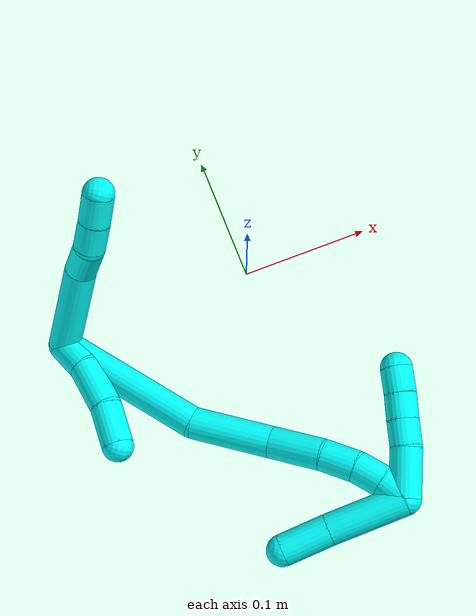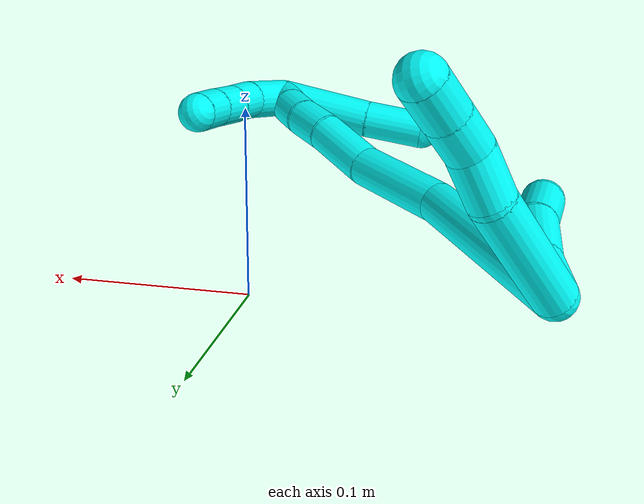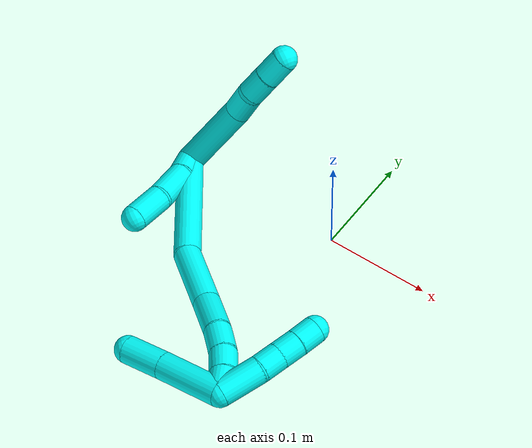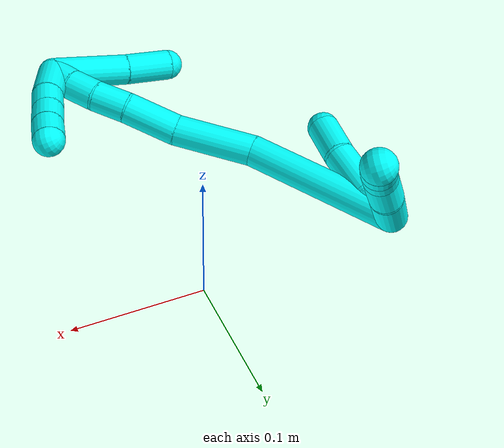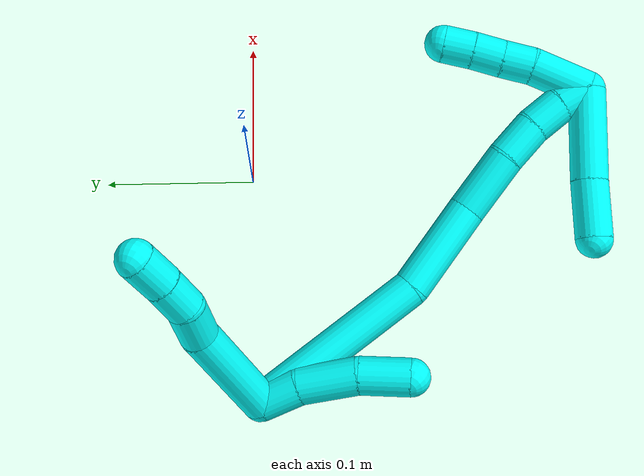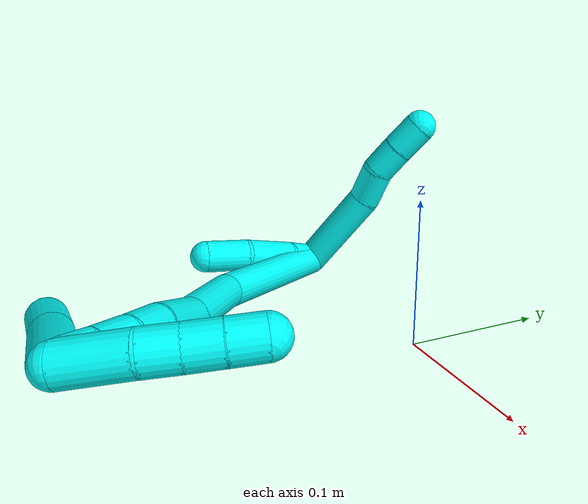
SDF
<sdf version="1.7">
 <world name="default">
  <model name="3">
   <static>0</static>
   <link name="3">
    <collision name="collision-cylinder-e_1_2_8">
     <pose>0.03224 0.016924 0.006787 -1.1894 1.05608 -0.751559</pose>
     <geometry><cylinder><radius>0.0125</radius><length>0.074077</length></cylinder></geometry>
     <surface>
      <friction><ode><mu>1.16</mu><mu2>1.16</mu2><slip1>0</slip1><slip2>0</slip2></ode></friction>
      <contact><ode><kp>1e+06</kp><kd>1</kd><max_vel>0</max_vel><min_depth>0.001</min_depth></ode></contact>
     </surface>
    </collision>
    <visual name="visual-cylinder-e_1_2_8">
     <pose>0.03224 0.016924 0.006787 -1.1894 1.05608 -0.751559</pose>
     <geometry><cylinder><radius>0.0125</radius><length>0.074077</length></cylinder></geometry>
     <material><ambient>0.003922 1 0.996078 1</ambient></material>
    </visual>
    <collision name="collision-cylinder-e_2_8_9">
     <pose>0.078097 0.036471 0.015751 -0.87812 1.32542 -0.702646</pose>
     <geometry><cylinder><radius>0.0125</radius><length>0.028077</length></cylinder></geometry>
     <surface>
      <friction><ode><mu>1.16</mu><mu2>1.16</mu2><slip1>0</slip1><slip2>0</slip2></ode></friction>
      <contact><ode><kp>1e+06</kp><kd>1</kd><max_vel>0</max_vel><min_depth>0.001</min_depth></ode></contact>
     </surface>
    </collision>
    <visual name="visual-cylinder-e_2_8_9">
     <pose>0.078097 0.036471 0.015751 -0.87812 1.32542 -0.702646</pose>
     <geometry><cylinder><radius>0.0125</radius><length>0.028077</length></cylinder></geometry>
     <material><ambient>0.003922 1 0.996078 1</ambient></material>
    </visual>
    <collision name="collision-cylinder-e_3_9_10">
     <pose>0.101738 0.044866 0.020187 -1.1978 1.01711 -0.727139</pose>
     <geometry><cylinder><radius>0.0125</radius><length>0.023567</length></cylinder></geometry>
     <surface>
      <friction><ode><mu>1.16</mu><mu2>1.16</mu2><slip1>0</slip1><slip2>0</slip2></ode></friction>
      <contact><ode><kp>1e+06</kp><kd>1</kd><max_vel>0</max_vel><min_depth>0.001</min_depth></ode></contact>
     </surface>
    </collision>
    <visual name="visual-cylinder-e_3_9_10">
     <pose>0.101738 0.044866 0.020187 -1.1978 1.01711 -0.727139</pose>
     <geometry><cylinder><radius>0.0125</radius><length>0.023567</length></cylinder></geometry>
     <material><ambient>0.003922 1 0.996078 1</ambient></material>
    </visual>
    <collision name="collision-cylinder-e_4_10_6">
     <pose>0.121721 0.057031 0.025138 -1.1722 0.962273 -0.667293</pose>
     <geometry><cylinder><radius>0.0125</radius><length>0.024279</length></cylinder></geometry>
     <surface>
      <friction><ode><mu>1.16</mu><mu2>1.16</mu2><slip1>0</slip1><slip2>0</slip2></ode></friction>
      <contact><ode><kp>1e+06</kp><kd>1</kd><max_vel>0</max_vel><min_depth>0.001</min_depth></ode></contact>
     </surface>
    </collision>
    <visual name="visual-cylinder-e_4_10_6">
     <pose>0.121721 0.057031 0.025138 -1.1722 0.962273 -0.667293</pose>
     <geometry><cylinder><radius>0.0125</radius><length>0.024279</length></cylinder></geometry>
     <material><ambient>0.003922 1 0.996078 1</ambient></material>
    </visual>
    <collision name="collision-cylinder-e_1_2_11">
     <pose>0.005931 -0.0105 -0.006742 2.1416 0.443744 0.783218</pose>
     <geometry><cylinder><radius>0.0125</radius><length>0.027632</length></cylinder></geometry>
     <surface>
      <friction><ode><mu>1.16</mu><mu2>1.16</mu2><slip1>0</slip1><slip2>0</slip2></ode></friction>
      <contact><ode><kp>1e+06</kp><kd>1</kd><max_vel>0</max_vel><min_depth>0.001</min_depth></ode></contact>
     </surface>
    </collision>
    <visual name="visual-cylinder-e_1_2_11">
     <pose>0.005931 -0.0105 -0.006742 2.1416 0.443744 0.783218</pose>
     <geometry><cylinder><radius>0.0125</radius><length>0.027632</length></cylinder></geometry>
     <material><ambient>0.003922 1 0.996078 1</ambient></material>
    </visual>
    <collision name="collision-cylinder-e_2_11_12">
     <pose>0.017039 -0.038189 -0.02094 1.98007 0.269543 0.407498</pose>
     <geometry><cylinder><radius>0.0125</radius><length>0.038877</length></cylinder></geometry>
     <surface>
      <friction><ode><mu>1.16</mu><mu2>1.16</mu2><slip1>0</slip1><slip2>0</slip2></ode></friction>
      <contact><ode><kp>1e+06</kp><kd>1</kd><max_vel>0</max_vel><min_depth>0.001</min_depth></ode></contact>
     </surface>
    </collision>
    <visual name="visual-cylinder-e_2_11_12">
     <pose>0.017039 -0.038189 -0.02094 1.98007 0.269543 0.407498</pose>
     <geometry><cylinder><radius>0.0125</radius><length>0.038877</length></cylinder></geometry>
     <material><ambient>0.003922 1 0.996078 1</ambient></material>
    </visual>
    <collision name="collision-cylinder-e_3_12_5">
     <pose>0.023255 -0.071286 -0.03352 1.8824 0.062099 0.085218</pose>
     <geometry><cylinder><radius>0.0125</radius><length>0.033491</length></cylinder></geometry>
     <surface>
      <friction><ode><mu>1.16</mu><mu2>1.16</mu2><slip1>0</slip1><slip2>0</slip2></ode></friction>
      <contact><ode><kp>1e+06</kp><kd>1</kd><max_vel>0</max_vel><min_depth>0.001</min_depth></ode></contact>
     </surface>
    </collision>
    <visual name="visual-cylinder-e_3_12_5">
     <pose>0.023255 -0.071286 -0.03352 1.8824 0.062099 0.085218</pose>
     <geometry><cylinder><radius>0.0125</radius><length>0.033491</length></cylinder></geometry>
     <material><ambient>0.003922 1 0.996078 1</ambient></material>
    </visual>
    <collision name="collision-cylinder-e_1_2_13">
     <pose>0.023076 -0.032912 -0.045718 2.51763 0.38879 1.09616</pose>
     <geometry><cylinder><radius>0.0125</radius><length>0.121751</length></cylinder></geometry>
     <surface>
      <friction><ode><mu>1.16</mu><mu2>1.16</mu2><slip1>0</slip1><slip2>0</slip2></ode></friction>
      <contact><ode><kp>1e+06</kp><kd>1</kd><max_vel>0</max_vel><min_depth>0.001</min_depth></ode></contact>
     </surface>
    </collision>
    <visual name="visual-cylinder-e_1_2_13">
     <pose>0.023076 -0.032912 -0.045718 2.51763 0.38879 1.09616</pose>
     <geometry><cylinder><radius>0.0125</radius><length>0.121751</length></cylinder></geometry>
     <material><ambient>0.003922 1 0.996078 1</ambient></material>
    </visual>
    <collision name="collision-cylinder-e_2_13_14">
     <pose>0.061837 -0.074689 -0.117619 2.81514 0.516095 2.02583</pose>
     <geometry><cylinder><radius>0.0125</radius><length>0.063565</length></cylinder></geometry>
     <surface>
      <friction><ode><mu>1.16</mu><mu2>1.16</mu2><slip1>0</slip1><slip2>0</slip2></ode></friction>
      <contact><ode><kp>1e+06</kp><kd>1</kd><max_vel>0</max_vel><min_depth>0.001</min_depth></ode></contact>
     </surface>
    </collision>
    <visual name="visual-cylinder-e_2_13_14">
     <pose>0.061837 -0.074689 -0.117619 2.81514 0.516095 2.02583</pose>
     <geometry><cylinder><radius>0.0125</radius><length>0.063565</length></cylinder></geometry>
     <material><ambient>0.003922 1 0.996078 1</ambient></material>
    </visual>
    <collision name="collision-cylinder-e_3_14_15">
     <pose>0.090825 -0.090722 -0.158922 2.69891 0.671734 1.99644</pose>
     <geometry><cylinder><radius>0.0125</radius><length>0.042756</length></cylinder></geometry>
     <surface>
      <friction><ode><mu>1.16</mu><mu2>1.16</mu2><slip1>0</slip1><slip2>0</slip2></ode></friction>
      <contact><ode><kp>1e+06</kp><kd>1</kd><max_vel>0</max_vel><min_depth>0.001</min_depth></ode></contact>
     </surface>
    </collision>
    <visual name="visual-cylinder-e_3_14_15">
     <pose>0.090825 -0.090722 -0.158922 2.69891 0.671734 1.99644</pose>
     <geometry><cylinder><radius>0.0125</radius><length>0.042756</length></cylinder></geometry>
     <material><ambient>0.003922 1 0.996078 1</ambient></material>
    </visual>
    <collision name="collision-cylinder-e_4_15_16">
     <pose>0.110938 -0.103133 -0.184678 2.68364 0.521236 1.70515</pose>
     <geometry><cylinder><radius>0.0125</radius><length>0.027347</length></cylinder></geometry>
     <surface>
      <friction><ode><mu>1.16</mu><mu2>1.16</mu2><slip1>0</slip1><slip2>0</slip2></ode></friction>
      <contact><ode><kp>1e+06</kp><kd>1</kd><max_vel>0</max_vel><min_depth>0.001</min_depth></ode></contact>
     </surface>
    </collision>
    <visual name="visual-cylinder-e_4_15_16">
     <pose>0.110938 -0.103133 -0.184678 2.68364 0.521236 1.70515</pose>
     <geometry><cylinder><radius>0.0125</radius><length>0.027347</length></cylinder></geometry>
     <material><ambient>0.003922 1 0.996078 1</ambient></material>
    </visual>
    <collision name="collision-cylinder-e_5_16_17">
     <pose>0.122451 -0.11444 -0.204078 2.53623 0.415657 1.18787</pose>
     <geometry><cylinder><radius>0.0125</radius><length>0.023301</length></cylinder></geometry>
     <surface>
      <friction><ode><mu>1.16</mu><mu2>1.16</mu2><slip1>0</slip1><slip2>0</slip2></ode></friction>
      <contact><ode><kp>1e+06</kp><kd>1</kd><max_vel>0</max_vel><min_depth>0.001</min_depth></ode></contact>
     </surface>
    </collision>
    <visual name="visual-cylinder-e_5_16_17">
     <pose>0.122451 -0.11444 -0.204078 2.53623 0.415657 1.18787</pose>
     <geometry><cylinder><radius>0.0125</radius><length>0.023301</length></cylinder></geometry>
     <material><ambient>0.003922 1 0.996078 1</ambient></material>
    </visual>
    <collision name="collision-cylinder-e_6_17_1">
     <pose>0.130456 -0.127382 -0.220262 2.39419 0.315352 0.770428</pose>
     <geometry><cylinder><radius>0.0125</radius><length>0.02128</length></cylinder></geometry>
     <surface>
      <friction><ode><mu>1.16</mu><mu2>1.16</mu2><slip1>0</slip1><slip2>0</slip2></ode></friction>
      <contact><ode><kp>1e+06</kp><kd>1</kd><max_vel>0</max_vel><min_depth>0.001</min_depth></ode></contact>
     </surface>
    </collision>
    <visual name="visual-cylinder-e_6_17_1">
     <pose>0.130456 -0.127382 -0.220262 2.39419 0.315352 0.770428</pose>
     <geometry><cylinder><radius>0.0125</radius><length>0.02128</length></cylinder></geometry>
     <material><ambient>0.003922 1 0.996078 1</ambient></material>
    </visual>
    <collision name="collision-cylinder-e_1_1_18">
     <pose>0.114766 -0.143985 -0.205427 0.412073 -0.663579 -0.143765</pose>
     <geometry><cylinder><radius>0.0125</radius><length>0.06166</length></cylinder></geometry>
     <surface>
      <friction><ode><mu>1.16</mu><mu2>1.16</mu2><slip1>0</slip1><slip2>0</slip2></ode></friction>
      <contact><ode><kp>1e+06</kp><kd>1</kd><max_vel>0</max_vel><min_depth>0.001</min_depth></ode></contact>
     </surface>
    </collision>
    <visual name="visual-cylinder-e_1_1_18">
     <pose>0.114766 -0.143985 -0.205427 0.412073 -0.663579 -0.143765</pose>
     <geometry><cylinder><radius>0.0125</radius><length>0.06166</length></cylinder></geometry>
     <material><ambient>0.003922 1 0.996078 1</ambient></material>
    </visual>
    <collision name="collision-cylinder-e_2_18_4">
     <pose>0.084573 -0.160708 -0.169279 0.466481 -0.624189 -0.152995</pose>
     <geometry><cylinder><radius>0.0125</radius><length>0.03834</length></cylinder></geometry>
     <surface>
      <friction><ode><mu>1.16</mu><mu2>1.16</mu2><slip1>0</slip1><slip2>0</slip2></ode></friction>
      <contact><ode><kp>1e+06</kp><kd>1</kd><max_vel>0</max_vel><min_depth>0.001</min_depth></ode></contact>
     </surface>
    </collision>
    <visual name="visual-cylinder-e_2_18_4">
     <pose>0.084573 -0.160708 -0.169279 0.466481 -0.624189 -0.152995</pose>
     <geometry><cylinder><radius>0.0125</radius><length>0.03834</length></cylinder></geometry>
     <material><ambient>0.003922 1 0.996078 1</ambient></material>
    </visual>
    <collision name="collision-cylinder-e_1_1_19">
     <pose>0.139126 -0.115553 -0.225479 -1.45362 0.277761 -0.247313</pose>
     <geometry><cylinder><radius>0.0125</radius><length>0.039167</length></cylinder></geometry>
     <surface>
      <friction><ode><mu>1.16</mu><mu2>1.16</mu2><slip1>0</slip1><slip2>0</slip2></ode></friction>
      <contact><ode><kp>1e+06</kp><kd>1</kd><max_vel>0</max_vel><min_depth>0.001</min_depth></ode></contact>
     </surface>
    </collision>
    <visual name="visual-cylinder-e_1_1_19">
     <pose>0.139126 -0.115553 -0.225479 -1.45362 0.277761 -0.247313</pose>
     <geometry><cylinder><radius>0.0125</radius><length>0.039167</length></cylinder></geometry>
     <material><ambient>0.003922 1 0.996078 1</ambient></material>
    </visual>
    <collision name="collision-cylinder-e_2_19_20">
     <pose>0.145861 -0.086886 -0.221283 -1.37322 0.13357 -0.109535</pose>
     <geometry><cylinder><radius>0.0125</radius><length>0.020504</length></cylinder></geometry>
     <surface>
      <friction><ode><mu>1.16</mu><mu2>1.16</mu2><slip1>0</slip1><slip2>0</slip2></ode></friction>
      <contact><ode><kp>1e+06</kp><kd>1</kd><max_vel>0</max_vel><min_depth>0.001</min_depth></ode></contact>
     </surface>
    </collision>
    <visual name="visual-cylinder-e_2_19_20">
     <pose>0.145861 -0.086886 -0.221283 -1.37322 0.13357 -0.109535</pose>
     <geometry><cylinder><radius>0.0125</radius><length>0.020504</length></cylinder></geometry>
     <material><ambient>0.003922 1 0.996078 1</ambient></material>
    </visual>
    <collision name="collision-cylinder-e_3_20_21">
     <pose>0.148961 -0.067171 -0.217425 -1.38198 0.172949 -0.143142</pose>
     <geometry><cylinder><radius>0.0125</radius><length>0.020158</length></cylinder></geometry>
     <surface>
      <friction><ode><mu>1.16</mu><mu2>1.16</mu2><slip1>0</slip1><slip2>0</slip2></ode></friction>
      <contact><ode><kp>1e+06</kp><kd>1</kd><max_vel>0</max_vel><min_depth>0.001</min_depth></ode></contact>
     </surface>
    </collision>
    <visual name="visual-cylinder-e_3_20_21">
     <pose>0.148961 -0.067171 -0.217425 -1.38198 0.172949 -0.143142</pose>
     <geometry><cylinder><radius>0.0125</radius><length>0.020158</length></cylinder></geometry>
     <material><ambient>0.003922 1 0.996078 1</ambient></material>
    </visual>
    <collision name="collision-cylinder-e_4_21_3">
     <pose>0.151971 -0.047668 -0.213325 -1.34533 0.126863 -0.101108</pose>
     <geometry><cylinder><radius>0.0125</radius><length>0.02017</length></cylinder></geometry>
     <surface>
      <friction><ode><mu>1.16</mu><mu2>1.16</mu2><slip1>0</slip1><slip2>0</slip2></ode></friction>
      <contact><ode><kp>1e+06</kp><kd>1</kd><max_vel>0</max_vel><min_depth>0.001</min_depth></ode></contact>
     </surface>
    </collision>
    <visual name="visual-cylinder-e_4_21_3">
     <pose>0.151971 -0.047668 -0.213325 -1.34533 0.126863 -0.101108</pose>
     <geometry><cylinder><radius>0.0125</radius><length>0.02017</length></cylinder></geometry>
     <material><ambient>0.003922 1 0.996078 1</ambient></material>
    </visual>
    <collision name="collision-sphere-3">
     <pose>0.153247 -0.037917 -0.211088 0 -0 0</pose>
     <geometry><sphere><radius>0.0125</radius></sphere></geometry>
     <surface>
      <friction><ode><mu>1.16</mu><mu2>1.16</mu2><slip1>0</slip1><slip2>0</slip2></ode></friction>
      <contact><ode><kp>1e+06</kp><kd>1</kd><max_vel>0</max_vel><min_depth>0.001</min_depth></ode></contact>
     </surface>
    </collision>
    <visual name="visual-sphere-3">
     <pose>0.153247 -0.037917 -0.211088 0 -0 0</pose>
     <geometry><sphere><radius>0.0125</radius></sphere></geometry>
     <material><ambient>0.003922 1 0.996078 1</ambient></material>
    </visual>
    <collision name="collision-sphere-21">
     <pose>0.150695 -0.057418 -0.215561 0 -0 0</pose>
     <geometry><sphere><radius>0.0125</radius></sphere></geometry>
     <surface>
      <friction><ode><mu>1.16</mu><mu2>1.16</mu2><slip1>0</slip1><slip2>0</slip2></ode></friction>
      <contact><ode><kp>1e+06</kp><kd>1</kd><max_vel>0</max_vel><min_depth>0.001</min_depth></ode></contact>
     </surface>
    </collision>
    <visual name="visual-sphere-21">
     <pose>0.150695 -0.057418 -0.215561 0 -0 0</pose>
     <geometry><sphere><radius>0.0125</radius></sphere></geometry>
     <material><ambient>0.003922 1 0.996078 1</ambient></material>
    </visual>
    <collision name="collision-sphere-20">
     <pose>0.147226 -0.076923 -0.219289 0 -0 0</pose>
     <geometry><sphere><radius>0.0125</radius></sphere></geometry>
     <surface>
      <friction><ode><mu>1.16</mu><mu2>1.16</mu2><slip1>0</slip1><slip2>0</slip2></ode></friction>
      <contact><ode><kp>1e+06</kp><kd>1</kd><max_vel>0</max_vel><min_depth>0.001</min_depth></ode></contact>
     </surface>
    </collision>
    <visual name="visual-sphere-20">
     <pose>0.147226 -0.076923 -0.219289 0 -0 0</pose>
     <geometry><sphere><radius>0.0125</radius></sphere></geometry>
     <material><ambient>0.003922 1 0.996078 1</ambient></material>
    </visual>
    <collision name="collision-sphere-19">
     <pose>0.144496 -0.096849 -0.223278 0 -0 0</pose>
     <geometry><sphere><radius>0.0125</radius></sphere></geometry>
     <surface>
      <friction><ode><mu>1.16</mu><mu2>1.16</mu2><slip1>0</slip1><slip2>0</slip2></ode></friction>
      <contact><ode><kp>1e+06</kp><kd>1</kd><max_vel>0</max_vel><min_depth>0.001</min_depth></ode></contact>
     </surface>
    </collision>
    <visual name="visual-sphere-19">
     <pose>0.144496 -0.096849 -0.223278 0 -0 0</pose>
     <geometry><sphere><radius>0.0125</radius></sphere></geometry>
     <material><ambient>0.003922 1 0.996078 1</ambient></material>
    </visual>
    <collision name="collision-sphere-11">
     <pose>0.011863 -0.020999 -0.013484 0 -0 0</pose>
     <geometry><sphere><radius>0.0125</radius></sphere></geometry>
     <surface>
      <friction><ode><mu>1.16</mu><mu2>1.16</mu2><slip1>0</slip1><slip2>0</slip2></ode></friction>
      <contact><ode><kp>1e+06</kp><kd>1</kd><max_vel>0</max_vel><min_depth>0.001</min_depth></ode></contact>
     </surface>
    </collision>
    <visual name="visual-sphere-11">
     <pose>0.011863 -0.020999 -0.013484 0 -0 0</pose>
     <geometry><sphere><radius>0.0125</radius></sphere></geometry>
     <material><ambient>0.003922 1 0.996078 1</ambient></material>
    </visual>
    <collision name="collision-sphere-6">
     <pose>0.131682 0.063427 0.027832 0 -0 0</pose>
     <geometry><sphere><radius>0.0125</radius></sphere></geometry>
     <surface>
      <friction><ode><mu>1.16</mu><mu2>1.16</mu2><slip1>0</slip1><slip2>0</slip2></ode></friction>
      <contact><ode><kp>1e+06</kp><kd>1</kd><max_vel>0</max_vel><min_depth>0.001</min_depth></ode></contact>
     </surface>
    </collision>
    <visual name="visual-sphere-6">
     <pose>0.131682 0.063427 0.027832 0 -0 0</pose>
     <geometry><sphere><radius>0.0125</radius></sphere></geometry>
     <material><ambient>0.003922 1 0.996078 1</ambient></material>
    </visual>
    <collision name="collision-sphere-10">
     <pose>0.111761 0.050636 0.022445 0 -0 0</pose>
     <geometry><sphere><radius>0.0125</radius></sphere></geometry>
     <surface>
      <friction><ode><mu>1.16</mu><mu2>1.16</mu2><slip1>0</slip1><slip2>0</slip2></ode></friction>
      <contact><ode><kp>1e+06</kp><kd>1</kd><max_vel>0</max_vel><min_depth>0.001</min_depth></ode></contact>
     </surface>
    </collision>
    <visual name="visual-sphere-10">
     <pose>0.111761 0.050636 0.022445 0 -0 0</pose>
     <geometry><sphere><radius>0.0125</radius></sphere></geometry>
     <material><ambient>0.003922 1 0.996078 1</ambient></material>
    </visual>
    <collision name="collision-sphere-9">
     <pose>0.091715 0.039096 0.017929 0 -0 0</pose>
     <geometry><sphere><radius>0.0125</radius></sphere></geometry>
     <surface>
      <friction><ode><mu>1.16</mu><mu2>1.16</mu2><slip1>0</slip1><slip2>0</slip2></ode></friction>
      <contact><ode><kp>1e+06</kp><kd>1</kd><max_vel>0</max_vel><min_depth>0.001</min_depth></ode></contact>
     </surface>
    </collision>
    <visual name="visual-sphere-9">
     <pose>0.091715 0.039096 0.017929 0 -0 0</pose>
     <geometry><sphere><radius>0.0125</radius></sphere></geometry>
     <material><ambient>0.003922 1 0.996078 1</ambient></material>
    </visual>
    <collision name="collision-sphere-2">
     <geometry><sphere><radius>0.0125</radius></sphere></geometry>
     <surface>
      <friction><ode><mu>1.16</mu><mu2>1.16</mu2><slip1>0</slip1><slip2>0</slip2></ode></friction>
      <contact><ode><kp>1e+06</kp><kd>1</kd><max_vel>0</max_vel><min_depth>0.001</min_depth></ode></contact>
     </surface>
    </collision>
    <visual name="visual-sphere-2">
     <geometry><sphere><radius>0.0125</radius></sphere></geometry>
     <material><ambient>0.003922 1 0.996078 1</ambient></material>
    </visual>
    <collision name="collision-sphere-8">
     <pose>0.064479 0.033847 0.013574 0 -0 0</pose>
     <geometry><sphere><radius>0.0125</radius></sphere></geometry>
     <surface>
      <friction><ode><mu>1.16</mu><mu2>1.16</mu2><slip1>0</slip1><slip2>0</slip2></ode></friction>
      <contact><ode><kp>1e+06</kp><kd>1</kd><max_vel>0</max_vel><min_depth>0.001</min_depth></ode></contact>
     </surface>
    </collision>
    <visual name="visual-sphere-8">
     <pose>0.064479 0.033847 0.013574 0 -0 0</pose>
     <geometry><sphere><radius>0.0125</radius></sphere></geometry>
     <material><ambient>0.003922 1 0.996078 1</ambient></material>
    </visual>
    <collision name="collision-sphere-12">
     <pose>0.022216 -0.055378 -0.028396 0 -0 0</pose>
     <geometry><sphere><radius>0.0125</radius></sphere></geometry>
     <surface>
      <friction><ode><mu>1.16</mu><mu2>1.16</mu2><slip1>0</slip1><slip2>0</slip2></ode></friction>
      <contact><ode><kp>1e+06</kp><kd>1</kd><max_vel>0</max_vel><min_depth>0.001</min_depth></ode></contact>
     </surface>
    </collision>
    <visual name="visual-sphere-12">
     <pose>0.022216 -0.055378 -0.028396 0 -0 0</pose>
     <geometry><sphere><radius>0.0125</radius></sphere></geometry>
     <material><ambient>0.003922 1 0.996078 1</ambient></material>
    </visual>
    <collision name="collision-sphere-5">
     <pose>0.024294 -0.087195 -0.038644 0 -0 0</pose>
     <geometry><sphere><radius>0.0125</radius></sphere></geometry>
     <surface>
      <friction><ode><mu>1.16</mu><mu2>1.16</mu2><slip1>0</slip1><slip2>0</slip2></ode></friction>
      <contact><ode><kp>1e+06</kp><kd>1</kd><max_vel>0</max_vel><min_depth>0.001</min_depth></ode></contact>
     </surface>
    </collision>
    <visual name="visual-sphere-5">
     <pose>0.024294 -0.087195 -0.038644 0 -0 0</pose>
     <geometry><sphere><radius>0.0125</radius></sphere></geometry>
     <material><ambient>0.003922 1 0.996078 1</ambient></material>
    </visual>
    <collision name="collision-sphere-13">
     <pose>0.046152 -0.065825 -0.091436 0 -0 0</pose>
     <geometry><sphere><radius>0.0125</radius></sphere></geometry>
     <surface>
      <friction><ode><mu>1.16</mu><mu2>1.16</mu2><slip1>0</slip1><slip2>0</slip2></ode></friction>
      <contact><ode><kp>1e+06</kp><kd>1</kd><max_vel>0</max_vel><min_depth>0.001</min_depth></ode></contact>
     </surface>
    </collision>
    <visual name="visual-sphere-13">
     <pose>0.046152 -0.065825 -0.091436 0 -0 0</pose>
     <geometry><sphere><radius>0.0125</radius></sphere></geometry>
     <material><ambient>0.003922 1 0.996078 1</ambient></material>
    </visual>
    <collision name="collision-sphere-14">
     <pose>0.077521 -0.083554 -0.143802 0 -0 0</pose>
     <geometry><sphere><radius>0.0125</radius></sphere></geometry>
     <surface>
      <friction><ode><mu>1.16</mu><mu2>1.16</mu2><slip1>0</slip1><slip2>0</slip2></ode></friction>
      <contact><ode><kp>1e+06</kp><kd>1</kd><max_vel>0</max_vel><min_depth>0.001</min_depth></ode></contact>
     </surface>
    </collision>
    <visual name="visual-sphere-14">
     <pose>0.077521 -0.083554 -0.143802 0 -0 0</pose>
     <geometry><sphere><radius>0.0125</radius></sphere></geometry>
     <material><ambient>0.003922 1 0.996078 1</ambient></material>
    </visual>
    <collision name="collision-sphere-15">
     <pose>0.10413 -0.09789 -0.174042 0 -0 0</pose>
     <geometry><sphere><radius>0.0125</radius></sphere></geometry>
     <surface>
      <friction><ode><mu>1.16</mu><mu2>1.16</mu2><slip1>0</slip1><slip2>0</slip2></ode></friction>
      <contact><ode><kp>1e+06</kp><kd>1</kd><max_vel>0</max_vel><min_depth>0.001</min_depth></ode></contact>
     </surface>
    </collision>
    <visual name="visual-sphere-15">
     <pose>0.10413 -0.09789 -0.174042 0 -0 0</pose>
     <geometry><sphere><radius>0.0125</radius></sphere></geometry>
     <material><ambient>0.003922 1 0.996078 1</ambient></material>
    </visual>
    <collision name="collision-sphere-16">
     <pose>0.117747 -0.108375 -0.195314 0 -0 0</pose>
     <geometry><sphere><radius>0.0125</radius></sphere></geometry>
     <surface>
      <friction><ode><mu>1.16</mu><mu2>1.16</mu2><slip1>0</slip1><slip2>0</slip2></ode></friction>
      <contact><ode><kp>1e+06</kp><kd>1</kd><max_vel>0</max_vel><min_depth>0.001</min_depth></ode></contact>
     </surface>
    </collision>
    <visual name="visual-sphere-16">
     <pose>0.117747 -0.108375 -0.195314 0 -0 0</pose>
     <geometry><sphere><radius>0.0125</radius></sphere></geometry>
     <material><ambient>0.003922 1 0.996078 1</ambient></material>
    </visual>
    <collision name="collision-sphere-17">
     <pose>0.127156 -0.120506 -0.212843 0 -0 0</pose>
     <geometry><sphere><radius>0.0125</radius></sphere></geometry>
     <surface>
      <friction><ode><mu>1.16</mu><mu2>1.16</mu2><slip1>0</slip1><slip2>0</slip2></ode></friction>
      <contact><ode><kp>1e+06</kp><kd>1</kd><max_vel>0</max_vel><min_depth>0.001</min_depth></ode></contact>
     </surface>
    </collision>
    <visual name="visual-sphere-17">
     <pose>0.127156 -0.120506 -0.212843 0 -0 0</pose>
     <geometry><sphere><radius>0.0125</radius></sphere></geometry>
     <material><ambient>0.003922 1 0.996078 1</ambient></material>
    </visual>
    <collision name="collision-sphere-1">
     <pose>0.133756 -0.134257 -0.227681 0 -0 0</pose>
     <geometry><sphere><radius>0.0125</radius></sphere></geometry>
     <surface>
      <friction><ode><mu>1.16</mu><mu2>1.16</mu2><slip1>0</slip1><slip2>0</slip2></ode></friction>
      <contact><ode><kp>1e+06</kp><kd>1</kd><max_vel>0</max_vel><min_depth>0.001</min_depth></ode></contact>
     </surface>
    </collision>
    <visual name="visual-sphere-1">
     <pose>0.133756 -0.134257 -0.227681 0 -0 0</pose>
     <geometry><sphere><radius>0.0125</radius></sphere></geometry>
     <material><ambient>0.003922 1 0.996078 1</ambient></material>
    </visual>
    <collision name="collision-sphere-18">
     <pose>0.095777 -0.153712 -0.183172 0 -0 0</pose>
     <geometry><sphere><radius>0.0125</radius></sphere></geometry>
     <surface>
      <friction><ode><mu>1.16</mu><mu2>1.16</mu2><slip1>0</slip1><slip2>0</slip2></ode></friction>
      <contact><ode><kp>1e+06</kp><kd>1</kd><max_vel>0</max_vel><min_depth>0.001</min_depth></ode></contact>
     </surface>
    </collision>
    <visual name="visual-sphere-18">
     <pose>0.095777 -0.153712 -0.183172 0 -0 0</pose>
     <geometry><sphere><radius>0.0125</radius></sphere></geometry>
     <material><ambient>0.003922 1 0.996078 1</ambient></material>
    </visual>
    <collision name="collision-sphere-4">
     <pose>0.073369 -0.167704 -0.155385 0 -0 0</pose>
     <geometry><sphere><radius>0.0125</radius></sphere></geometry>
     <surface>
      <friction><ode><mu>1.16</mu><mu2>1.16</mu2><slip1>0</slip1><slip2>0</slip2></ode></friction>
      <contact><ode><kp>1e+06</kp><kd>1</kd><max_vel>0</max_vel><min_depth>0.001</min_depth></ode></contact>
     </surface>
    </collision>
    <visual name="visual-sphere-4">
     <pose>0.073369 -0.167704 -0.155385 0 -0 0</pose>
     <geometry><sphere><radius>0.0125</radius></sphere></geometry>
     <material><ambient>0.003922 1 0.996078 1</ambient></material>
    </visual>
    <inertial>
     <pose>0.074204 -0.058582 -0.100844 0 -0 0</pose>
     <mass>0.75</mass>
     <inertia>
      <ixx>0.000277</ixx>
      <ixy>0</ixy>
      <ixz>0</ixz>
      <iyy>0.000188</iyy>
      <iyz>0</iyz>
      <izz>-2.9e-05</izz>
     </inertia>
    </inertial>
   </link>
   <pose>-0.155875 -0.005703 0.011437 -0.357693 -1.10088 -0.062548</pose>
  </model>
 </world>
</sdf>
